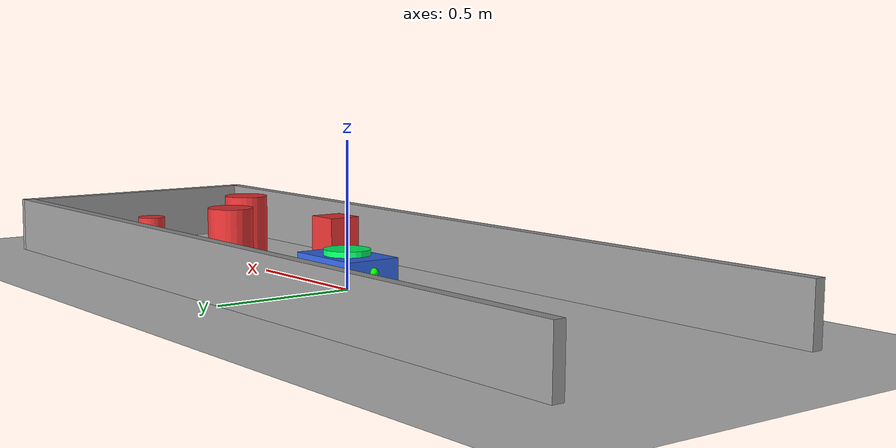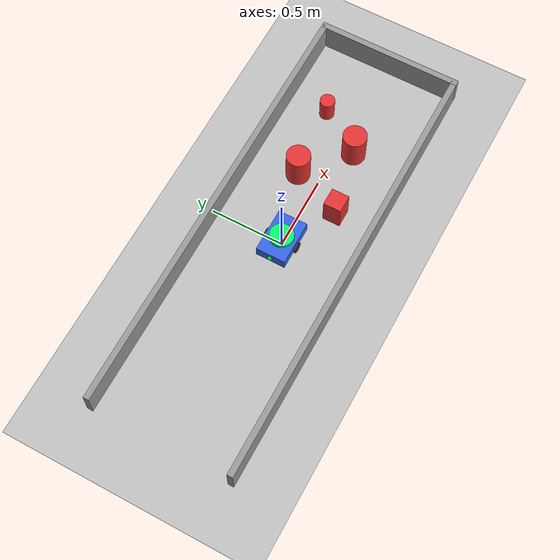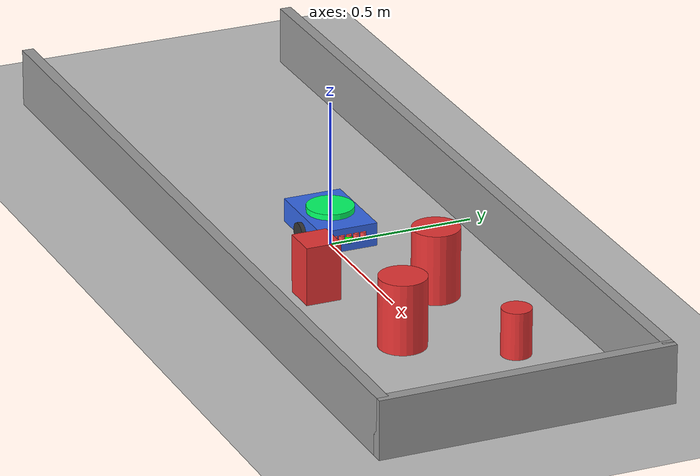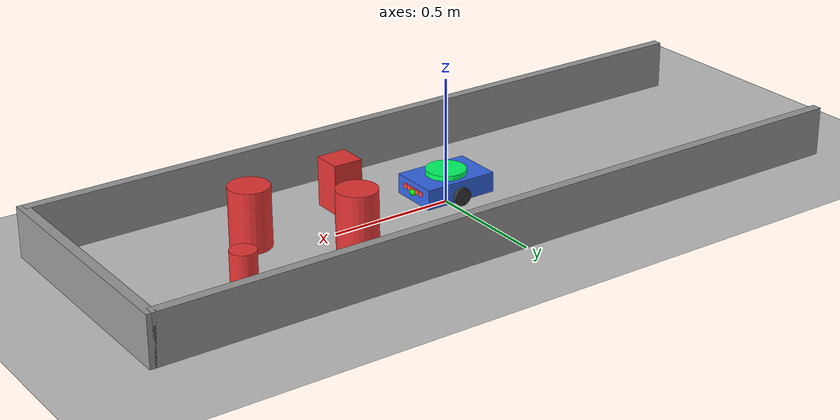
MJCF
<mujoco model="robothon_mobile_robot">
    <option timestep="0.002" gravity="0 0 -9.81">
        <flag contact="enable"/>
    </option>

    <default>
        <joint damping="0.5"/>
        <geom condim="4" friction="1.0 0.2 0.01"/>
    </default>

    <visual>
        <global offwidth="1280" offheight="720"/>
        <headlight ambient="0.6 0.6 0.6" diffuse="0.8 0.8 0.8" specular="0.3 0.3 0.3"/>
    </visual>

    <asset>
        <texture name="ground" type="2d" builtin="checker" rgb1="0.85 0.85 0.85" rgb2="0.65 0.65 0.65" width="512" height="512"/>
        <texture name="line" type="2d" builtin="flat" rgb1="0.1 0.1 0.1" width="64" height="64"/>
        <material name="ground_mat" texture="ground" texrepeat="8 8" specular="0.1" shininess="0.1"/>
        <material name="line_mat" texture="line" rgba="0.1 0.1 0.1 1"/>
        <material name="chassis_mat" rgba="0.2 0.4 0.9 1" specular="0.6" shininess="0.6"/>
        <material name="wheel_mat" rgba="0.2 0.2 0.2 1" specular="0.4" shininess="0.4"/>
        <material name="sensor_mat" rgba="1.0 0.3 0.3 1"/>
        <material name="top_mat" rgba="0.0 1.0 0.4 1" specular="0.6" shininess="0.6"/>
        <material name="led_mat" rgba="0.0 1.0 0.0 1"/>
        <material name="obstacle_mat" rgba="0.9 0.2 0.2 1" specular="0.3" shininess="0.3"/>
        <material name="wall_mat" rgba="0.6 0.6 0.6 1" specular="0.2" shininess="0.2"/>
    </asset>

    <worldbody>
        <!-- 地面 -->
        <geom name="ground" type="plane" size="3 3 0.1" material="ground_mat"/>

        <!-- 障碍物 - 触发 cautious/avoid 行为 -->
        <geom name="obstacle_1" type="cylinder" size="0.08 0.12" pos="0.5 0.15 0.12" material="obstacle_mat" mass="2"/>
        <geom name="obstacle_2" type="cylinder" size="0.08 0.12" pos="0.8 -0.1 0.12" material="obstacle_mat" mass="2"/>
        <geom name="obstacle_3" type="box" size="0.06 0.06 0.1" pos="0.35 -0.2 0.1" material="obstacle_mat" mass="1.5"/>
        <geom name="obstacle_4" type="cylinder" size="0.05 0.08" pos="1.0 0.2 0.08" material="obstacle_mat" mass="1"/>

        <!-- 边界墙 -->
        <geom name="wall_n" type="box" size="1.5 0.02 0.1" pos="0 0.48 0.1" material="wall_mat" contype="1"/>
        <geom name="wall_s" type="box" size="1.5 0.02 0.1" pos="0 -0.48 0.1" material="wall_mat" contype="1"/>
        <geom name="wall_e" type="box" size="0.02 0.5 0.1" pos="1.5 0 0.1" material="wall_mat" contype="1"/>

        <!-- 三摄像机系统 -->
        <camera name="global_view" pos="0 0 2.8" xyaxes="1 0 0 0 1 0" fovy="70"/>
        <camera name="main_follow" pos="1.3 -1.6 1.1" xyaxes="1 0 0 0 1 0" fovy="55"/>
        <camera name="task_view" pos="0.6 -0.8 0.9" xyaxes="1 0 0 0 1 0" fovy="50"/>

        <!-- 灯光 -->
        <light pos="0 0 3" dir="0 0 -1" diffuse="1 1 1" specular="0.4 0.4 0.4"/>
        <light pos="1 1 2" dir="-0.5 -0.5 -1" diffuse="0.5 0.5 0.5"/>
        <light pos="-1 1 2" dir="0.5 -0.5 -1" diffuse="0.4 0.4 0.4"/>

        <!-- 移动机器人 -->
        <body name="robot" pos="0 0 0.08">
            <freejoint name="robot_joint"/>

            <!-- 底盘主体 -->
            <geom name="chassis" type="box" size="0.15 0.1 0.04" material="chassis_mat" mass="0.5"/>

            <!-- 顶部绿色圆盘 -->
            <geom name="top_disk" type="cylinder" size="0.08 0.01 0" pos="0 0 0.05" material="top_mat"/>

            <!-- 前端LED -->
            <geom name="led_front" type="sphere" size="0.015" pos="0.15 0 0" material="led_mat"/>

            <!-- 后端LED -->
            <geom name="led_rear" type="sphere" size="0.015" pos="-0.15 0 0" material="led_mat"/>

            <!-- 左轮 -->
            <body name="left_wheel" pos="0 -0.1 -0.02">
                <joint name="left_wheel_joint" type="hinge" axis="0 1 0"/>
                <geom name="left_wheel_geom" type="cylinder" size="0.035 0.015" euler="90 0 0" material="wheel_mat" mass="0.05"/>
            </body>

            <!-- 右轮 -->
            <body name="right_wheel" pos="0 0.1 -0.02">
                <joint name="right_wheel_joint" type="hinge" axis="0 1 0"/>
                <geom name="right_wheel_geom" type="cylinder" size="0.035 0.015" euler="90 0 0" material="wheel_mat" mass="0.05"/>
            </body>

            <!-- 传感器阵列 -->
            <body name="sensor_array" pos="0.15 0 0.01">
                <geom name="sensor_0" type="cylinder" size="0.01 0.008" pos="0 -0.05 0" material="sensor_mat" contype="0" conaffinity="0"/>
                <geom name="sensor_1" type="cylinder" size="0.01 0.008" pos="0 -0.025 0" material="sensor_mat" contype="0" conaffinity="0"/>
                <geom name="sensor_2" type="cylinder" size="0.01 0.008" pos="0 0 0" material="sensor_mat" contype="0" conaffinity="0"/>
                <geom name="sensor_3" type="cylinder" size="0.01 0.008" pos="0 0.025 0" material="sensor_mat" contype="0" conaffinity="0"/>
                <geom name="sensor_4" type="cylinder" size="0.01 0.008" pos="0 0.05 0" material="sensor_mat" contype="0" conaffinity="0"/>
            </body>
        </body>
    </worldbody>

    <!-- 传感器 -->
    <sensor>
        <jointpos name="left_wheel_pos" joint="left_wheel_joint"/>
        <jointpos name="right_wheel_pos" joint="right_wheel_joint"/>
        <jointvel name="left_wheel_vel" joint="left_wheel_joint"/>
        <jointvel name="right_wheel_vel" joint="right_wheel_joint"/>
    </sensor>

    <!-- 执行器 -->
    <actuator>
        <motor name="left_motor" joint="left_wheel_joint" gear="50" ctrlrange="-10 10" ctrllimited="true"/>
        <motor name="right_motor" joint="right_wheel_joint" gear="50" ctrlrange="-10 10" ctrllimited="true"/>
    </actuator>
</mujoco>
